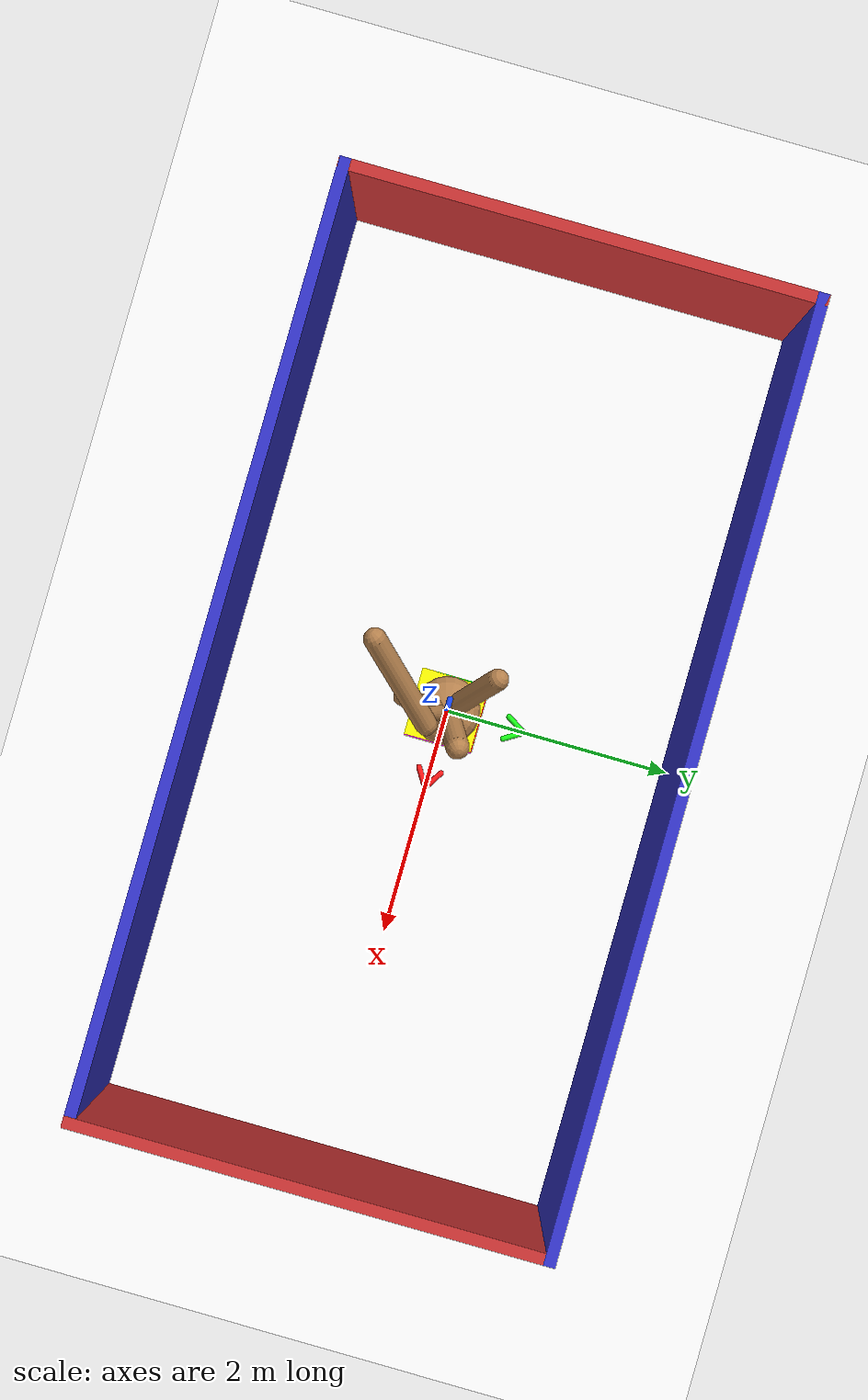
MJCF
<mujoco model="dex-gripper">
  <asset>
    <texture name="skybox" type="skybox" builtin="gradient" rgb1=".2 .3 .4" rgb2="0 0 0" width="800" height="800" mark="random" markrgb="1 1 1"/>
    <texture name="grid" type="2d" builtin="checker" rgb1=".2 .1 .2" rgb2=".3 .2 .3" width="300" height="300" mark="edge" markrgb=".3 .2 .3"/>
    <material name="grid" texture="grid" texrepeat="1 1" texuniform="true" reflectance=".2"/>
    <material name="self" rgba=".7 .5 .3 1"/>
  </asset>
  <visual>
    <headlight ambient=".4 .4 .4" diffuse=".8 .8 .8" specular="0.1 0.1 0.1"/>
    <map znear=".001"/>
    <quality shadowsize="16384"/>
  </visual>
  <compiler coordinate="local" angle="degree" inertiafromgeom="true"/>
  <option integrator="RK4" timestep="0.01"/>
  <default>
    <joint armature="1" damping="1" limited="true"/>
    <geom conaffinity="0" condim="3" density="5.0" friction="1 0.5 0.5" margin="0.01" rgba=".7 .5 .3 1"/>
  </default>
  <worldbody>
    <light cutoff="100" diffuse="1 1 1" dir="0.3 0 -1.3" directional="true" exponent="1" pos="-30 0 130" specular=".1 .1 .1"/>
    <geom conaffinity="1" condim="3" name="floor" pos="0 0 0" rgba="1 1 1 1" size="200 200 .125" type="plane" material="grid"/>
    <!-- Fixed gripper base: no root slide joints anymore -->
    <body name="0" pos="0 0 0.3" gravcomp="1">
      <camera name="track" mode="fixed" pos="0 10 5" quat="0 0 0.547 0.892"/>
      <geom pos="0 0 0" size="0.298502 0.286162 0.182535" type="ellipsoid"/>
      <!-- Arm 1: flipped upward -->
      <body name="1" pos="0 0 0" gravcomp="1">
        <joint axis="-0.707107 0.707107 0" name="1_joint" pos="0 0 0" range="-45 45" type="hinge" damping="0"/>
        <geom fromto="-0.056978 -0.035299 -0.105554 0.269897 0.167208 0.5" size="0.098375 0.098375 0.098375" type="capsule"/>
      </body>
      <!-- Arm 2: flipped upward -->
      <body name="2" pos="0 0 0" gravcomp="1">
        <joint axis="-0.707107 -0.707107 0" name="2_joint" pos="0 0 0" range="-45 45" type="hinge" damping="0"/>
        <geom fromto="0.059321 -0.056047 -0.0846 -0.350596 0.33125 0.5" size="0.093374 0.093374 0.093374" type="capsule"/>
      </body>
      <!-- Arm 3: flipped upward -->
      <body name="3" pos="0 0 0" gravcomp="1">
        <joint axis="0.707107 -0.707107 0" name="3_joint" pos="0 0 0" range="-45 45" type="hinge" damping="0"/>
        <geom fromto="-0.004685 0.008304 -0.02224 0.105334 -0.186687 0.5" size="0.070149 0.070149 0.070149" type="capsule"/>
        <body name="13" pos="0.105334 -0.186687 0.5" gravcomp="1">
          <joint axis="0.707107 -0.707107 0" name="13_joint" pos="0 0 0" range="-45 45" type="hinge" damping="0"/>
          <geom fromto="0.052775 0.055074 -0.055141 -0.478548 -0.499392 0.5" size="0.093357 0.093357 0.093357" type="capsule"/>
        </body>
      </body>
      <!-- Arm 4: flipped upward -->
      <body name="4" pos="0 0 0" gravcomp="1">
        <joint axis="0.707107 0.707107 0" name="4_joint" pos="0 0 0" range="-45 45" type="hinge" damping="0"/>
        <geom fromto="0.000351 0.02191 -0.02895 -0.00607 -0.37842 0.5" size="0.075657 0.075657 0.075657" type="capsule"/>
      </body>
    </body>
    <!-- Box starts above the gripper -->
    <body name="box" pos="0 0 0">
      <freejoint name="box_joint"/>
      <!-- Top (Yellow) -->
      <geom name="box_top" type="box" pos="0 0 0.295" size="0.3 0.3 0.005" rgba="1 1 0 1" density="10" friction="2.5 0.1 0.05" contype="1" conaffinity="1"/>
      <!-- Bottom (White) -->
      <geom name="box_bottom" type="box" pos="0 0 -0.295" size="0.3 0.3 0.005" rgba="1 1 1 1" density="10" friction="2.5 0.1 0.05" contype="1" conaffinity="1"/>
      <!-- Front (Red) -->
      <geom name="box_front" type="box" pos="0 0.295 0" size="0.3 0.005 0.3" rgba="1 0 0 1" density="10" friction="2.5 0.1 0.05" contype="1" conaffinity="1"/>
      <!-- Back (Blue) -->
      <geom name="box_back" type="box" pos="0 -0.295 0" size="0.3 0.005 0.3" rgba="0 0 1 1" density="10" friction="2.5 0.1 0.05" contype="1" conaffinity="1"/>
      <!-- Left (Green) -->
      <geom name="box_left" type="box" pos="-0.295 0 0" size="0.005 0.3 0.3" rgba="0 1 0 1" density="10" friction="2.5 0.1 0.05" contype="1" conaffinity="1"/>
      <!-- Right (Magenta) -->
      <geom name="box_right" type="box" pos="0.295 0 0" size="0.005 0.3 0.3" rgba="1 0 1 1" density="10" friction="2.5 0.1 0.05" contype="1" conaffinity="1"/>
    </body>
    <!-- RGB arrows visualize the target orientation and never participate in collisions. -->
    <body name="goal_orientation_frame" pos="0 0 0">
      <!-- Goal X axis (red). -->
      <geom name="goal_axis_x_shaft" type="capsule" fromto="0 0 0 0.7 0 0" size="0.018" rgba="1 0.1 0.1 0.9" contype="0" conaffinity="0"/>
      <geom name="goal_axis_x_head_pos" type="capsule" fromto="0.7 0 0 0.54 0.1 0" size="0.025" rgba="1 0.1 0.1 0.9" contype="0" conaffinity="0"/>
      <geom name="goal_axis_x_head_neg" type="capsule" fromto="0.7 0 0 0.54 -0.1 0" size="0.025" rgba="1 0.1 0.1 0.9" contype="0" conaffinity="0"/>
      <!-- Goal Y axis (green). -->
      <geom name="goal_axis_y_shaft" type="capsule" fromto="0 0 0 0 0.7 0" size="0.018" rgba="0.1 1 0.1 0.9" contype="0" conaffinity="0"/>
      <geom name="goal_axis_y_head_pos" type="capsule" fromto="0 0.7 0 0.1 0.54 0" size="0.025" rgba="0.1 1 0.1 0.9" contype="0" conaffinity="0"/>
      <geom name="goal_axis_y_head_neg" type="capsule" fromto="0 0.7 0 -0.1 0.54 0" size="0.025" rgba="0.1 1 0.1 0.9" contype="0" conaffinity="0"/>
      <!-- Goal Z axis (blue). -->
      <geom name="goal_axis_z_shaft" type="capsule" fromto="0 0 0 0 0 0.7" size="0.018" rgba="0.1 0.3 1 0.9" contype="0" conaffinity="0"/>
      <geom name="goal_axis_z_head_pos" type="capsule" fromto="0 0 0.7 0.1 0 0.54" size="0.025" rgba="0.1 0.3 1 0.9" contype="0" conaffinity="0"/>
      <geom name="goal_axis_z_head_neg" type="capsule" fromto="0 0 0.7 -0.1 0 0.54" size="0.025" rgba="0.1 0.3 1 0.9" contype="0" conaffinity="0"/>
    </body>
    <body name="box_walls" pos="0 0 0">
      <geom name="wall_left" type="box" pos="-4.0 0 0.5" size="0.05 2.05 0.5" rgba="0.8 0.2 0.2 1" contype="1" conaffinity="1"/>
      <geom name="wall_right" type="box" pos="4.0 0 0.5" size="0.05 2.05 0.5" rgba="0.8 0.2 0.2 1" contype="1" conaffinity="1"/>
      <geom name="wall_front" type="box" pos="0 2.0 0.5" size="4.05 0.05 0.5" rgba="0.2 0.2 0.8 1" contype="1" conaffinity="1"/>
      <geom name="wall_back" type="box" pos="0 -2.0 0.5" size="4.05 0.05 0.5" rgba="0.2 0.2 0.8 1" contype="1" conaffinity="1"/>
    </body>
  </worldbody>
  <actuator>
    <!-- Only the finger joints remain actuated -->
    <motor ctrllimited="true" ctrlrange="-1.0 1.0" joint="1_joint" gear="41.082439" name="1_joint"/>
    <motor ctrllimited="true" ctrlrange="-1.0 1.0" joint="2_joint" gear="82.346834" name="2_joint"/>
    <motor ctrllimited="true" ctrlrange="-1.0 1.0" joint="3_joint" gear="75.706557" name="3_joint"/>
    <motor ctrllimited="true" ctrlrange="-1.0 1.0" joint="4_joint" gear="116.79866" name="4_joint"/>
    <motor ctrllimited="true" ctrlrange="-1.0 1.0" joint="13_joint" gear="110.614802" name="13_joint"/>
  </actuator>
</mujoco>
